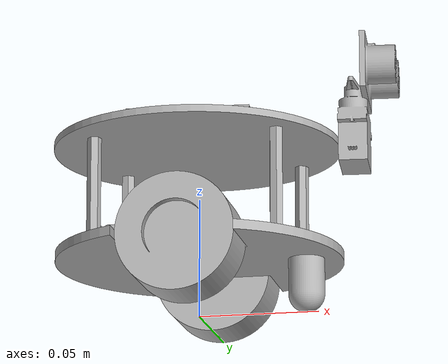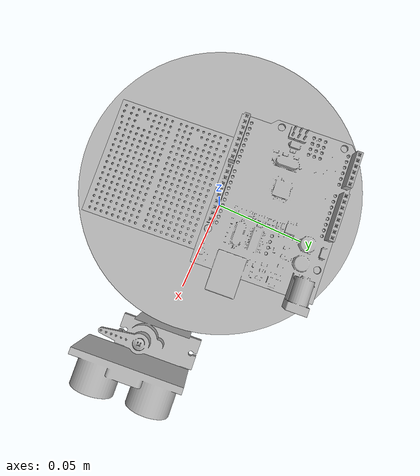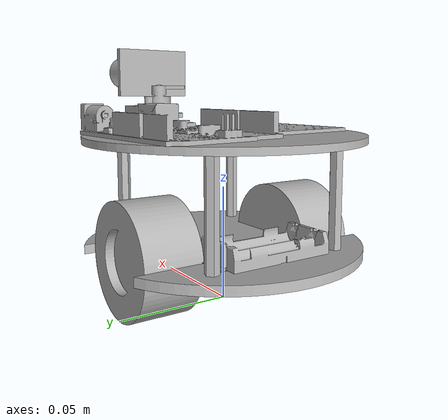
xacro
<?xml version="1.0" ?>
<robot name="elebotfinal" xmlns:xacro="http://www.ros.org/wiki/xacro">

<xacro:include filename="$(find elebotfinal_description)/urdf/materials.xacro" />
<xacro:include filename="$(find elebotfinal_description)/urdf/elebotfinal.trans" />
<xacro:include filename="$(find elebotfinal_description)/urdf/elebotfinal.gazebo" />
<link name="base_link">
  <inertial>
    <origin rpy="0 0 0" xyz="0.0 0.0 0.024399999999999998"/>
    <mass value="0.03795979533447845"/>
    <inertia ixx="2e-05" ixy="0.0" ixz="0.0" iyy="4.5e-05" iyz="0.0" izz="6.5e-05"/>
  </inertial>
  <visual>
    <origin rpy="0 0 0" xyz="0 0 0"/>
    <geometry>
      <mesh filename="package://elebotfinal_description/meshes/base_link.stl" scale="0.001 0.001 0.001"/>
    </geometry>
    <material name="silver"/>
  </visual>
  <collision>
    <origin rpy="0 0 0" xyz="0 0 0"/>
    <geometry>
      <mesh filename="package://elebotfinal_description/meshes/base_link.stl" scale="0.001 0.001 0.001"/>
    </geometry>
  </collision>
</link>

<link name="right_wheel_1">
  <inertial>
    <origin rpy="0 0 0" xyz="0.0 -0.01198588004004296 2.9802316864335765e-11"/>
    <mass value="0.04129179501212183"/>
    <inertia ixx="8e-06" ixy="-0.0" ixz="0.0" iyy="1.3e-05" iyz="0.0" izz="8e-06"/>
  </inertial>
  <visual>
    <origin rpy="0 0 0" xyz="-0.0 0.025 -0.0244"/>
    <geometry>
      <mesh filename="package://elebotfinal_description/meshes/right_wheel_1.stl" scale="0.001 0.001 0.001"/>
    </geometry>
    <material name="silver"/>
  </visual>
  <collision>
    <origin rpy="0 0 0" xyz="-0.0 0.025 -0.0244"/>
    <geometry>
      <mesh filename="package://elebotfinal_description/meshes/right_wheel_1.stl" scale="0.001 0.001 0.001"/>
    </geometry>
  </collision>
</link>

<link name="left_wheel_1">
  <inertial>
    <origin rpy="0 0 0" xyz="-3.2006588430602435e-18 0.01198588004004296 2.980231339488881e-11"/>
    <mass value="0.04129179501212184"/>
    <inertia ixx="8e-06" ixy="-0.0" ixz="-0.0" iyy="1.3e-05" iyz="-0.0" izz="8e-06"/>
  </inertial>
  <visual>
    <origin rpy="0 0 0" xyz="-0.0 -0.025 -0.0244"/>
    <geometry>
      <mesh filename="package://elebotfinal_description/meshes/left_wheel_1.stl" scale="0.001 0.001 0.001"/>
    </geometry>
    <material name="silver"/>
  </visual>
  <collision>
    <origin rpy="0 0 0" xyz="-0.0 -0.025 -0.0244"/>
    <geometry>
      <mesh filename="package://elebotfinal_description/meshes/left_wheel_1.stl" scale="0.001 0.001 0.001"/>
    </geometry>
  </collision>
</link>

<link name="stand_1">
  <inertial>
    <origin rpy="0 0 0" xyz="-0.038 0.03 -0.0004000000000000045"/>
    <mass value="0.008087811245942907"/>
    <inertia ixx="1e-06" ixy="-0.0" ixz="0.0" iyy="1e-06" iyz="0.0" izz="0.0"/>
  </inertial>
  <visual>
    <origin rpy="0 0 0" xyz="-0.0 -0.0 -0.0488"/>
    <geometry>
      <mesh filename="package://elebotfinal_description/meshes/stand_1.stl" scale="0.001 0.001 0.001"/>
    </geometry>
    <material name="silver"/>
  </visual>
  <collision>
    <origin rpy="0 0 0" xyz="-0.0 -0.0 -0.0488"/>
    <geometry>
      <mesh filename="package://elebotfinal_description/meshes/stand_1.stl" scale="0.001 0.001 0.001"/>
    </geometry>
  </collision>
</link>

<link name="stand__1__1">
  <inertial>
    <origin rpy="0 0 0" xyz="-0.038 -0.03 -0.0004000000000000045"/>
    <mass value="0.008087811245942907"/>
    <inertia ixx="1e-06" ixy="-0.0" ixz="0.0" iyy="1e-06" iyz="0.0" izz="0.0"/>
  </inertial>
  <visual>
    <origin rpy="0 0 0" xyz="-0.0 -0.0 -0.0488"/>
    <geometry>
      <mesh filename="package://elebotfinal_description/meshes/stand__1__1.stl" scale="0.001 0.001 0.001"/>
    </geometry>
    <material name="silver"/>
  </visual>
  <collision>
    <origin rpy="0 0 0" xyz="-0.0 -0.0 -0.0488"/>
    <geometry>
      <mesh filename="package://elebotfinal_description/meshes/stand__1__1.stl" scale="0.001 0.001 0.001"/>
    </geometry>
  </collision>
</link>

<link name="stand__3__1">
  <inertial>
    <origin rpy="0 0 0" xyz="0.038 -0.03 -0.0004000000000000045"/>
    <mass value="0.008087811245942907"/>
    <inertia ixx="1e-06" ixy="-0.0" ixz="-0.0" iyy="1e-06" iyz="0.0" izz="0.0"/>
  </inertial>
  <visual>
    <origin rpy="0 0 0" xyz="-0.0 -0.0 -0.0488"/>
    <geometry>
      <mesh filename="package://elebotfinal_description/meshes/stand__3__1.stl" scale="0.001 0.001 0.001"/>
    </geometry>
    <material name="silver"/>
  </visual>
  <collision>
    <origin rpy="0 0 0" xyz="-0.0 -0.0 -0.0488"/>
    <geometry>
      <mesh filename="package://elebotfinal_description/meshes/stand__3__1.stl" scale="0.001 0.001 0.001"/>
    </geometry>
  </collision>
</link>

<link name="stand__2__1">
  <inertial>
    <origin rpy="0 0 0" xyz="0.038000000000000006 0.03 -0.0004000000000000045"/>
    <mass value="0.008087811245942907"/>
    <inertia ixx="1e-06" ixy="0.0" ixz="0.0" iyy="1e-06" iyz="0.0" izz="0.0"/>
  </inertial>
  <visual>
    <origin rpy="0 0 0" xyz="-0.0 -0.0 -0.0488"/>
    <geometry>
      <mesh filename="package://elebotfinal_description/meshes/stand__2__1.stl" scale="0.001 0.001 0.001"/>
    </geometry>
    <material name="silver"/>
  </visual>
  <collision>
    <origin rpy="0 0 0" xyz="-0.0 -0.0 -0.0488"/>
    <geometry>
      <mesh filename="package://elebotfinal_description/meshes/stand__2__1.stl" scale="0.001 0.001 0.001"/>
    </geometry>
  </collision>
</link>

<link name="top_plate_1">
  <inertial>
    <origin rpy="0 0 0" xyz="0.03499999999999998 -0.03 -0.020899999999999988"/>
    <mass value="0.04030789038261845"/>
    <inertia ixx="3.6e-05" ixy="-0.0" ixz="0.0" iyy="3.6e-05" iyz="0.0" izz="7.3e-05"/>
  </inertial>
  <visual>
    <origin rpy="0 0 0" xyz="0.036 -0.03 -0.0928"/>
    <geometry>
      <mesh filename="package://elebotfinal_description/meshes/top_plate_1.stl" scale="0.001 0.001 0.001"/>
    </geometry>
    <material name="silver"/>
  </visual>
  <collision>
    <origin rpy="0 0 0" xyz="0.036 -0.03 -0.0928"/>
    <geometry>
      <mesh filename="package://elebotfinal_description/meshes/top_plate_1.stl" scale="0.001 0.001 0.001"/>
    </geometry>
  </collision>
</link>

<link name="castor_1">
  <inertial>
    <origin rpy="0 0 0" xyz="0.04499999999941281 1.262829577602012e-18 -0.032428517587939666"/>
    <mass value="0.027605469171404343"/>
    <inertia ixx="1e-06" ixy="0.0" ixz="-0.0" iyy="1e-06" iyz="0.0" izz="1e-06"/>
  </inertial>
  <visual>
    <origin rpy="0 0 0" xyz="-0.0 -0.0 -0.0448"/>
    <geometry>
      <mesh filename="package://elebotfinal_description/meshes/castor_1.stl" scale="0.001 0.001 0.001"/>
    </geometry>
    <material name="silver"/>
  </visual>
  <collision>
    <origin rpy="0 0 0" xyz="-0.0 -0.0 -0.0448"/>
    <geometry>
      <mesh filename="package://elebotfinal_description/meshes/castor_1.stl" scale="0.001 0.001 0.001"/>
    </geometry>
  </collision>
</link>

<link name="breadboard_1">
  <inertial>
    <origin rpy="0 0 0" xyz="0.005556707406164164 -0.026519737726445874 -0.021624999010000007"/>
    <mass value="0.027207871222168088"/>
    <inertia ixx="6e-06" ixy="-0.0" ixz="-0.0" iyy="6e-06" iyz="-0.0" izz="1.1e-05"/>
  </inertial>
  <visual>
    <origin rpy="0 0 0" xyz="0.002 -0.0 -0.0958"/>
    <geometry>
      <mesh filename="package://elebotfinal_description/meshes/breadboard_1.stl" scale="0.001 0.001 0.001"/>
    </geometry>
    <material name="silver"/>
  </visual>
  <collision>
    <origin rpy="0 0 0" xyz="0.002 -0.0 -0.0958"/>
    <geometry>
      <mesh filename="package://elebotfinal_description/meshes/breadboard_1.stl" scale="0.001 0.001 0.001"/>
    </geometry>
  </collision>
</link>

<link name="raspberrypi__1">
  <inertial>
    <origin rpy="0 0 0" xyz="0.0040068235695858555 0.024911895152370248 -0.01926041506230225"/>
    <mass value="0.08467570456428807"/>
    <inertia ixx="2.4e-05" ixy="-1e-06" ixz="-2e-06" iyy="4.1e-05" iyz="0.0" izz="6.3e-05"/>
  </inertial>
  <visual>
    <origin rpy="0 0 0" xyz="0.002 -0.0 -0.0958"/>
    <geometry>
      <mesh filename="package://elebotfinal_description/meshes/raspberrypi__1.stl" scale="0.001 0.001 0.001"/>
    </geometry>
    <material name="silver"/>
  </visual>
  <collision>
    <origin rpy="0 0 0" xyz="0.002 -0.0 -0.0958"/>
    <geometry>
      <mesh filename="package://elebotfinal_description/meshes/raspberrypi__1.stl" scale="0.001 0.001 0.001"/>
    </geometry>
  </collision>
</link>

<link name="servo_1">
  <inertial>
    <origin rpy="0 0 0" xyz="0.007320851912220032 0.0020257004340246887 -0.01820440770709693"/>
    <mass value="0.057286092804072125"/>
    <inertia ixx="6e-06" ixy="0.0" ixz="-0.0" iyy="4e-06" iyz="1e-06" izz="4e-06"/>
  </inertial>
  <visual>
    <origin rpy="0 0 0" xyz="-0.058 -0.0 -0.0928"/>
    <geometry>
      <mesh filename="package://elebotfinal_description/meshes/servo_1.stl" scale="0.001 0.001 0.001"/>
    </geometry>
    <material name="silver"/>
  </visual>
  <collision>
    <origin rpy="0 0 0" xyz="-0.058 -0.0 -0.0928"/>
    <geometry>
      <mesh filename="package://elebotfinal_description/meshes/servo_1.stl" scale="0.001 0.001 0.001"/>
    </geometry>
  </collision>
</link>

<link name="ultrasonic_1">
  <inertial>
    <origin rpy="0 0 0" xyz="0.14852715670099287 -0.0878031941783474 -0.04207139833209038"/>
    <mass value="0.040599102302850715"/>
    <inertia ixx="7e-06" ixy="0.0" ixz="0.0" iyy="2e-06" iyz="-0.0" izz="6e-06"/>
  </inertial>
  <visual>
    <origin rpy="0 0 0" xyz="0.073781 -0.086176 -0.14296"/>
    <geometry>
      <mesh filename="package://elebotfinal_description/meshes/ultrasonic_1.stl" scale="0.001 0.001 0.001"/>
    </geometry>
    <material name="silver"/>
  </visual>
  <collision>
    <origin rpy="0 0 0" xyz="0.073781 -0.086176 -0.14296"/>
    <geometry>
      <mesh filename="package://elebotfinal_description/meshes/ultrasonic_1.stl" scale="0.001 0.001 0.001"/>
    </geometry>
  </collision>
</link>

<link name="batterypack_1">
  <inertial>
    <origin rpy="0 0 0" xyz="0.0 0.0 -0.0488"/>
    <mass value="0.0"/>
    <inertia ixx="0.0" ixy="0.0" ixz="0.0" iyy="0.0" iyz="0.0" izz="0.0"/>
  </inertial>
  <visual>
    <origin rpy="0 0 0" xyz="-0.0 -0.0 -0.0488"/>
    <geometry>
      <mesh filename="package://elebotfinal_description/meshes/batterypack_1.stl" scale="0.001 0.001 0.001"/>
    </geometry>
    <material name="silver"/>
  </visual>
  <collision>
    <origin rpy="0 0 0" xyz="-0.0 -0.0 -0.0488"/>
    <geometry>
      <mesh filename="package://elebotfinal_description/meshes/batterypack_1.stl" scale="0.001 0.001 0.001"/>
    </geometry>
  </collision>
</link>

<joint name="Rev1" type="continuous">
  <origin rpy="0 0 0" xyz="0.0 -0.025 0.0244"/>
  <parent link="base_link"/>
  <child link="right_wheel_1"/>
  <axis xyz="0.0 -1.0 0.0"/>
</joint>

<joint name="Rev2" type="continuous">
  <origin rpy="0 0 0" xyz="0.0 0.025 0.0244"/>
  <parent link="base_link"/>
  <child link="left_wheel_1"/>
  <axis xyz="0.0 1.0 0.0"/>
</joint>

<joint name="Rigid3" type="fixed">
  <origin rpy="0 0 0" xyz="0.0 0.0 0.0488"/>
  <parent link="base_link"/>
  <child link="stand_1"/>
</joint>

<joint name="Rigid4" type="fixed">
  <origin rpy="0 0 0" xyz="0.0 0.0 0.0488"/>
  <parent link="base_link"/>
  <child link="stand__1__1"/>
</joint>

<joint name="Rigid5" type="fixed">
  <origin rpy="0 0 0" xyz="0.0 0.0 0.0488"/>
  <parent link="base_link"/>
  <child link="stand__3__1"/>
</joint>

<joint name="Rigid6" type="fixed">
  <origin rpy="0 0 0" xyz="0.0 0.0 0.0488"/>
  <parent link="base_link"/>
  <child link="stand__2__1"/>
</joint>

<joint name="Rigid7" type="fixed">
  <origin rpy="0 0 0" xyz="-0.036 0.03 0.044"/>
  <parent link="stand_1"/>
  <child link="top_plate_1"/>
</joint>

<joint name="Rigid8" type="fixed">
  <origin rpy="0 0 0" xyz="0.0 0.0 0.0448"/>
  <parent link="base_link"/>
  <child link="castor_1"/>
</joint>

<joint name="Rigid9" type="fixed">
  <origin rpy="0 0 0" xyz="0.034 -0.03 0.003"/>
  <parent link="top_plate_1"/>
  <child link="breadboard_1"/>
</joint>

<joint name="Rigid10" type="fixed">
  <origin rpy="0 0 0" xyz="0.034 -0.03 0.003"/>
  <parent link="top_plate_1"/>
  <child link="raspberrypi__1"/>
</joint>

<joint name="Rigid11" type="fixed">
  <origin rpy="0 0 0" xyz="0.094 -0.03 0.0"/>
  <parent link="top_plate_1"/>
  <child link="servo_1"/>
</joint>

<joint name="Rigid12" type="fixed">
  <origin rpy="0 0 0" xyz="-0.131781 0.086176 0.05016"/>
  <parent link="servo_1"/>
  <child link="ultrasonic_1"/>
</joint>

<joint name="Rigid13" type="fixed">
  <origin rpy="0 0 0" xyz="0.0 0.0 0.0488"/>
  <parent link="base_link"/>
  <child link="batterypack_1"/>
</joint>

</robot>

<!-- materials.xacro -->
<robot name="elebotfinal" xmlns:xacro="http://www.ros.org/wiki/xacro" >

<material name="silver">
  <color rgba="0.700 0.700 0.700 1.000"/>
</material>

</robot>

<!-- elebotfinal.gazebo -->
<robot name="elebotfinal" xmlns:xacro="http://www.ros.org/wiki/xacro" >

<xacro:property name="body_color" value="Gazebo/Silver" />

<gazebo>
  <plugin filename="libgazebo_ros_control.so" name="control"/>
</gazebo>
<gazebo reference="base_link">
  <material>${body_color}</material>
  <mu1>0.2</mu1>
  <mu2>0.2</mu2>
  <selfCollide>true</selfCollide>
  <gravity>true</gravity>
</gazebo>

<gazebo reference="right_wheel_1">
  <material>${body_color}</material>
  <mu1>0.2</mu1>
  <mu2>0.2</mu2>
  <selfCollide>true</selfCollide>
</gazebo>

<gazebo reference="left_wheel_1">
  <material>${body_color}</material>
  <mu1>0.2</mu1>
  <mu2>0.2</mu2>
  <selfCollide>true</selfCollide>
</gazebo>

<gazebo reference="stand_1">
  <material>${body_color}</material>
  <mu1>0.2</mu1>
  <mu2>0.2</mu2>
  <selfCollide>true</selfCollide>
</gazebo>

<gazebo reference="stand__1__1">
  <material>${body_color}</material>
  <mu1>0.2</mu1>
  <mu2>0.2</mu2>
  <selfCollide>true</selfCollide>
</gazebo>

<gazebo reference="stand__3__1">
  <material>${body_color}</material>
  <mu1>0.2</mu1>
  <mu2>0.2</mu2>
  <selfCollide>true</selfCollide>
</gazebo>

<gazebo reference="stand__2__1">
  <material>${body_color}</material>
  <mu1>0.2</mu1>
  <mu2>0.2</mu2>
  <selfCollide>true</selfCollide>
</gazebo>

<gazebo reference="top_plate_1">
  <material>${body_color}</material>
  <mu1>0.2</mu1>
  <mu2>0.2</mu2>
  <selfCollide>true</selfCollide>
</gazebo>

<gazebo reference="castor_1">
  <material>${body_color}</material>
  <mu1>0.2</mu1>
  <mu2>0.2</mu2>
  <selfCollide>true</selfCollide>
</gazebo>

<gazebo reference="breadboard_1">
  <material>${body_color}</material>
  <mu1>0.2</mu1>
  <mu2>0.2</mu2>
  <selfCollide>true</selfCollide>
</gazebo>

<gazebo reference="raspberrypi__1">
  <material>${body_color}</material>
  <mu1>0.2</mu1>
  <mu2>0.2</mu2>
  <selfCollide>true</selfCollide>
</gazebo>

<gazebo reference="servo_1">
  <material>${body_color}</material>
  <mu1>0.2</mu1>
  <mu2>0.2</mu2>
  <selfCollide>true</selfCollide>
</gazebo>

<gazebo reference="ultrasonic_1">
  <material>${body_color}</material>
  <mu1>0.2</mu1>
  <mu2>0.2</mu2>
  <selfCollide>true</selfCollide>
</gazebo>

<gazebo reference="batterypack_1">
  <material>${body_color}</material>
  <mu1>0.2</mu1>
  <mu2>0.2</mu2>
  <selfCollide>true</selfCollide>
</gazebo>

</robot>
